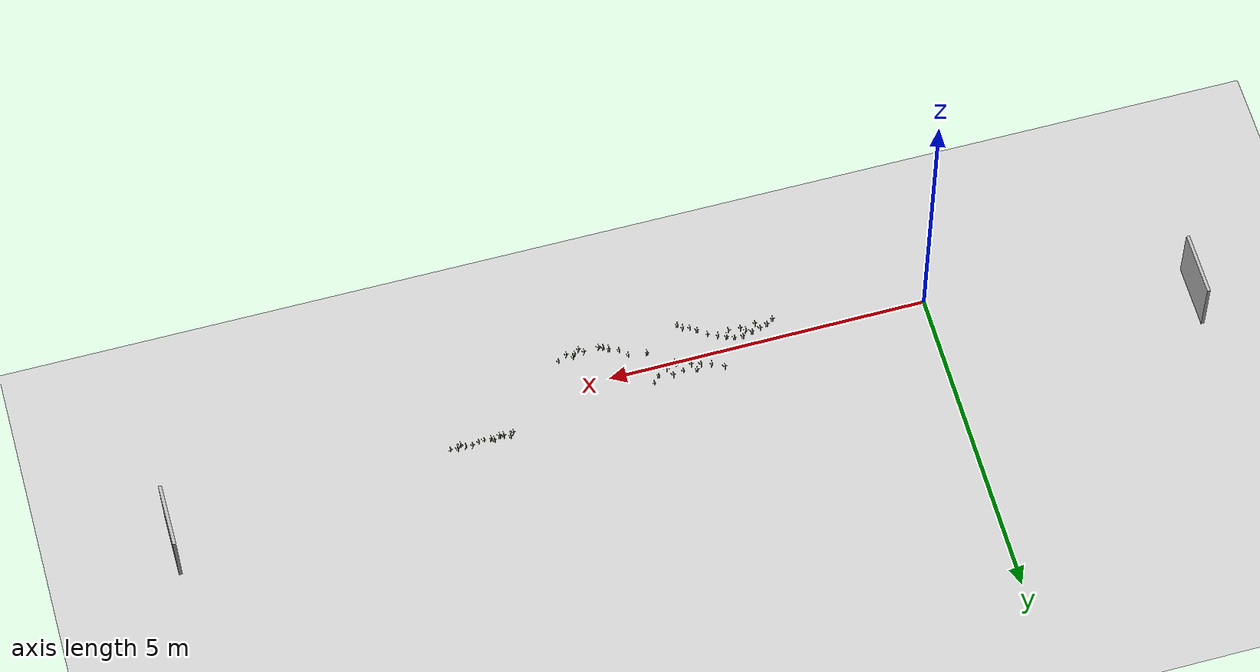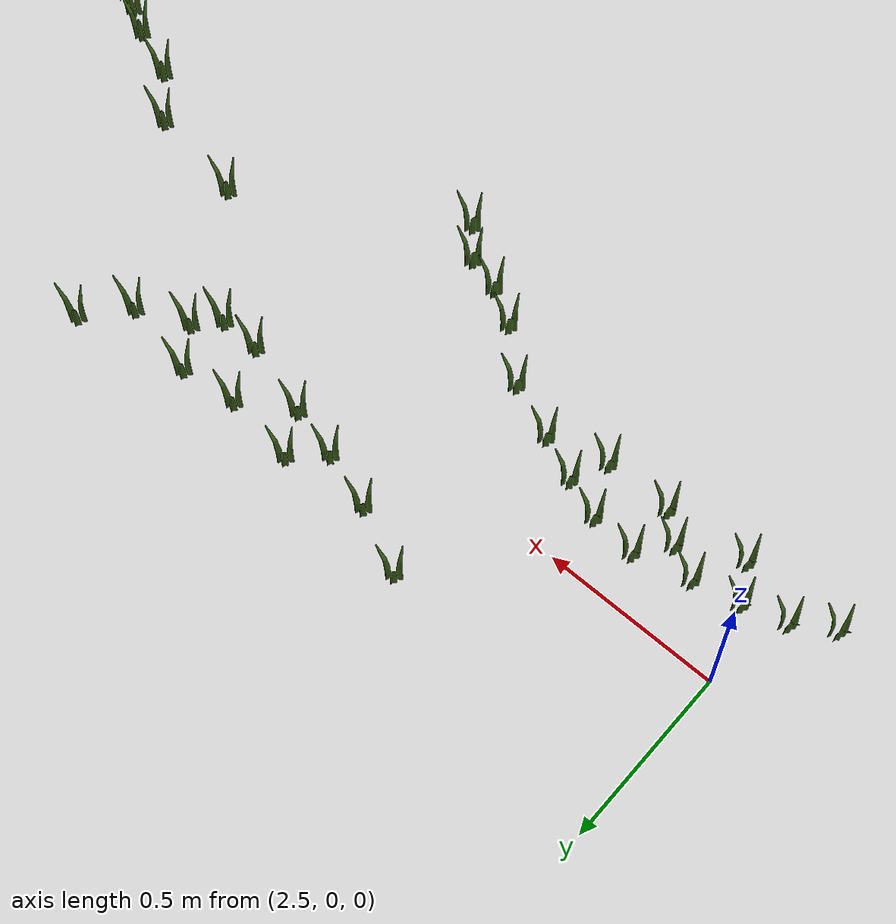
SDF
<sdf version="1.6">
 <world name="default">
  <light name="sun" type="directional">
   <pose>0 0 10 0 -0 0</pose>
   <diffuse>0.5 0.5 0.5 1</diffuse>
   <specular>0.1 0.1 0.1 1</specular>
   <attenuation>
    <range>1000</range>
    <constant>0.9</constant>
    <linear>0.01</linear>
    <quadratic>0.001</quadratic>
   </attenuation>
   <direction>0.9 0.5 -1</direction>
  </light>
  <scene><background>130 200 255 1</background><ambient>130 140 140 1</ambient></scene>
  <include><uri>model://Sign</uri><pose>12 1 0 0 0 0</pose><static>1</static></include>
  <include><uri>model://Sign</uri><pose>-4 1 0 0 0 0</pose><static>1</static></include>
  <include><uri>model://dirt_plane</uri></include>
  <include><uri>model://Grass</uri><pose>2.34029 -0.291745 0 0 -0 0</pose><static>1</static></include>
  <include><uri>model://Grass</uri><pose>2.4448 -0.226501 0 0 -0 0</pose><static>1</static></include>
  <include><uri>model://Grass</uri><pose>2.56409 -0.190453 0 0 -0 0</pose><static>1</static></include>
  <include><uri>model://Grass</uri><pose>2.69556 -0.160797 0 0 -0 0</pose><static>1</static></include>
  <include><uri>model://Grass</uri><pose>3.05031 -0.27232 0 0 -0 0</pose><static>1</static></include>
  <include><uri>model://Grass</uri><pose>3.26434 0.309193 0 0 -0 0</pose><static>1</static></include>
  <include><uri>model://Grass</uri><pose>3.44294 0.224645 0 0 -0 0</pose><static>1</static></include>
  <include><uri>model://Grass</uri><pose>4.74557 -0.391794 0 0 -0 0</pose><static>1</static></include>
  <include><uri>model://Grass</uri><pose>5.03233 -0.515364 0 0 -0 0</pose><static>1</static></include>
  <include><uri>model://Grass</uri><pose>4.96565 -0.493128 0 0 -0 0</pose><static>1</static></include>
  <include><uri>model://Grass</uri><pose>4.34545 -0.229694 0 0 -0 0</pose><static>1</static></include>
  <include><uri>model://Grass</uri><pose>4.63102 -0.277476 0 0 -0 0</pose><static>1</static></include>
  <include><uri>model://Grass</uri><pose>7.64122 0.590489 0 0 -0 0</pose><static>1</static></include>
  <include><uri>model://Grass</uri><pose>7.40155 0.592621 0 0 -0 0</pose><static>1</static></include>
  <include><uri>model://Grass</uri><pose>7.1964 0.573075 0 0 -0 0</pose><static>1</static></include>
  <include><uri>model://Grass</uri><pose>7 0.567642 0 0 -0 0</pose><static>1</static></include>
  <include><uri>model://Grass</uri><pose>6.80373 0.568265 0 0 -0 0</pose><static>1</static></include>
  <include><uri>model://Grass</uri><pose>6.65038 0.548206 0 0 -0 0</pose><static>1</static></include>
  <include><uri>model://Grass</uri><pose>6.86338 0.557376 0 0 -0 0</pose><static>1</static></include>
  <include><uri>model://Grass</uri><pose>5.33412 -0.567918 0 0 -0 0</pose><static>1</static></include>
  <include><uri>model://Grass</uri><pose>6.9559 0.599059 0 0 -0 0</pose><static>1</static></include>
  <include><uri>model://Grass</uri><pose>7.11013 0.565026 0 0 -0 0</pose><static>1</static></include>
  <include><uri>model://Grass</uri><pose>7.29787 0.603918 0 0 -0 0</pose><static>1</static></include>
  <include><uri>model://Grass</uri><pose>7.47161 0.550224 0 0 -0 0</pose><static>1</static></include>
  <include><uri>model://Grass</uri><pose>7.52756 0.599362 0 0 -0 0</pose><static>1</static></include>
  <include><uri>model://Grass</uri><pose>6.70457 0.598916 0 0 -0 0</pose><static>1</static></include>
  <include><uri>model://Grass</uri><pose>5.53959 -0.526766 0 0 -0 0</pose><static>1</static></include>
  <include><uri>model://Grass</uri><pose>5.68421 -0.447125 0 0 -0 0</pose><static>1</static></include>
  <include><uri>model://Grass</uri><pose>5.41154 -0.504498 0 0 -0 0</pose><static>1</static></include>
  <include><uri>model://Grass</uri><pose>5.26645 -0.508658 0 0 -0 0</pose><static>1</static></include>
  <include><uri>model://Grass</uri><pose>5.26645 -0.508658 0 0 -0 0</pose><static>1</static></include>
  <include><uri>model://Grass</uri><pose>5.45141 -0.46103 0 0 -0 0</pose><static>1</static></include>
  <include><uri>model://Grass</uri><pose>4.88901 -0.449994 0 0 -0 0</pose><static>1</static></include>
  <include><uri>model://Grass</uri><pose>3.60262 0.172685 0 0 -0 0</pose><static>1</static></include>
  <include><uri>model://Grass</uri><pose>3.7492 0.134706 0 0 -0 0</pose><static>1</static></include>
  <include><uri>model://Grass</uri><pose>3.95819 0.072067 0 0 -0 0</pose><static>1</static></include>
  <include><uri>model://Grass</uri><pose>4.13436 0.134191 0 0 -0 0</pose><static>1</static></include>
  <include><uri>model://Grass</uri><pose>4.27786 0.19599 0 0 -0 0</pose><static>1</static></include>
  <include><uri>model://Grass</uri><pose>4.37709 0.310747 0 0 -0 0</pose><static>1</static></include>
  <include><uri>model://Grass</uri><pose>4 0.1228 0.168952 0 -0 0</pose><static>1</static></include>
  <include><uri>model://Grass</uri><pose>2.85285 -0.120544 0 0 -0 0</pose><static>1</static></include>
  <include><uri>model://Grass</uri><pose>4.05725 0.241411 0 0 -0 0</pose><static>1</static></include>
  <include><uri>model://Grass</uri><pose>3.6865 0.251185 0 0 -0 0</pose><static>1</static></include>
  <include><uri>model://Grass</uri><pose>3.8936 0.223629 0 0 -0 0</pose><static>1</static></include>
  <include><uri>model://Grass</uri><pose>2.98511 -0.13313 0 0 -0 0</pose><static>1</static></include>
  <include><uri>model://Grass</uri><pose>3.09742 -0.174831 0 0 -0 0</pose><static>1</static></include>
  <include><uri>model://Grass</uri><pose>3.2186 -0.227124 0 0 -0 00</pose><static>1</static></include>
  <include><uri>model://Grass</uri><pose>3.37189 -0.291335 0 0 -0 0</pose><static>1</static></include>
  <include><uri>model://Grass</uri><pose>3.50189 -0.41335 0 0 -0 0</pose><static>1</static></include>
  <include><uri>model://Grass</uri><pose>3.60189 -0.471335 0 0 -0 0</pose><static>1</static></include>
  <include><uri>model://Grass</uri><pose>3.70189 -0.501335 0 0 -0 0</pose><static>1</static></include>
  <include><uri>model://Grass</uri><pose>3.77189 -0.581335 0 0 -0 0</pose><static>1</static></include>
  <include><uri>model://Grass</uri><pose>2.85756 -0.270177 0 0 -0 0</pose><static>1</static></include>
  <include><uri>model://Grass</uri><pose>2.62087 -0.288178 0 0 -0 0</pose><static>1</static></include>
  <include><uri>model://Grass</uri><pose>2.78504 -0.204906 0 0 -0 0</pose><static>1</static></include>
 </world>
</sdf>

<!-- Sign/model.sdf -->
<sdf version='1.6'>
  <model name='Sign'>
    <link name='link'>
      <pose frame=''>0 0 0 0 -0 0</pose>
      <inertial>
        <mass>1</mass>
        <inertia>
          <ixx>0.166667</ixx>
          <ixy>0</ixy>
          <ixz>0</ixz>
          <iyy>0.166667</iyy>
          <iyz>0</iyz>
          <izz>0.166667</izz>
        </inertia>
        <pose frame=''>0 0 0 0 -0 0</pose>
      </inertial>
      <self_collide>0</self_collide>
      <kinematic>0</kinematic>
      <gravity>1</gravity>
      <visual name='visual'>
        <geometry>
          <box>
            <size>1 0.05 1</size>
          </box>
        </geometry>
        <material>
          <script>
            <uri>model://ground_plane/materials/scripts/my_ground_plane.material</uri>
            <uri>model://ground_plane/materials/textures</uri>
            <name>my_ground_plane/NaioLogo</name>
          </script>
        </material>
        <pose frame=''>0 0 0.5 0 -0 1.57</pose>
        <cast_shadows>1</cast_shadows>
        <transparency>0</transparency>
      </visual>
    </link>
    <static>1</static>
    <allow_auto_disable>1</allow_auto_disable>
  </model>
</sdf>

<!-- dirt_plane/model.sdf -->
<sdf version="1.4">
<model name="dirt_plane">
  <static>true</static>
    <link name="link">
      <collision name="collision">
        <geometry>
          <plane>
            <normal>0 0 1</normal>
            <size>100 100</size>
          </plane>
        </geometry>
        <surface>
          <friction>
            <ode>
              <mu>100</mu>
              <mu2>50</mu2>
            </ode>
          </friction>
        </surface>
      </collision>
      <visual name="visual">
        <cast_shadows>false</cast_shadows>
        <geometry>
          <plane>
            <normal>0 0 1</normal>
            <size>100 100</size>
          </plane>
        </geometry>
        <material>
          <script>
            <uri>model://ground_plane/materials/scripts/my_ground_plane.material</uri>
            <uri>model://ground_plane/materials/textures</uri>
            <name>my_ground_plane/Dirt</name>
          </script>
        </material>
      </visual>
    </link>
  </model>
</sdf>

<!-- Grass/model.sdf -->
<sdf version='1.6'>
  <model name='Grass'>
    <link name='link'>
      <pose frame=''>0 0 0 0 -0 0</pose>
      <inertial>
        <mass>1</mass>
        <inertia>
          <ixx>0.145833</ixx>
          <ixy>0</ixy>
          <ixz>0</ixz>
          <iyy>0.145833</iyy>
          <iyz>0</iyz>
          <izz>0.125</izz>
        </inertia>
        <pose frame=''>0 0 0 0 -0 0</pose>
      </inertial>
      <self_collide>0</self_collide>
      <kinematic>0</kinematic>
      <gravity>1</gravity>
      <visual name='visual'>
        <geometry>
          <mesh>
            <uri>model://Grass/Herbe.dae</uri>
            <scale>1 1 1</scale>
          </mesh>
        </geometry>
        <material>
          <script>
            <name>Gazebo/Grey</name>
            <uri>file://media/materials/scripts/gazebo.material</uri>
          </script>
          <ambient>0.9 1 0.5 0</ambient>
          <diffuse>0.25 0.4 0.1 0</diffuse>
          <specular>0 0 0 1</specular>
          <emissive>0 0 0 1</emissive>
          <shader type='vertex'>
            <normal_map>__default__</normal_map>
          </shader>
        </material>
        <pose frame=''>0 0 0 0 -0 0</pose>
        <cast_shadows>1</cast_shadows>
        <transparency>0</transparency>
      </visual>
    </link>
    <static>1</static>
    <allow_auto_disable>1</allow_auto_disable>
  </model>
</sdf>
